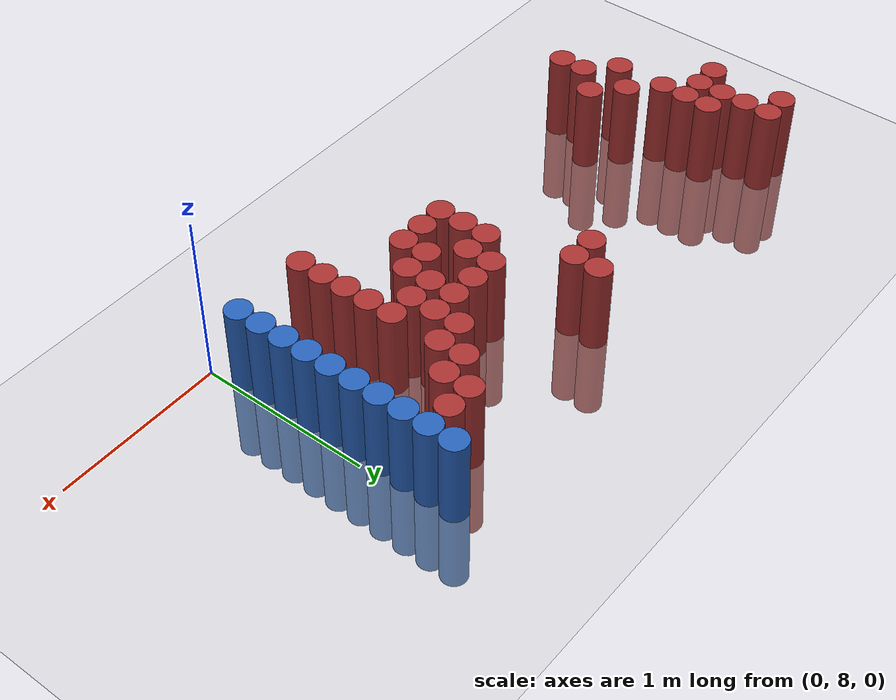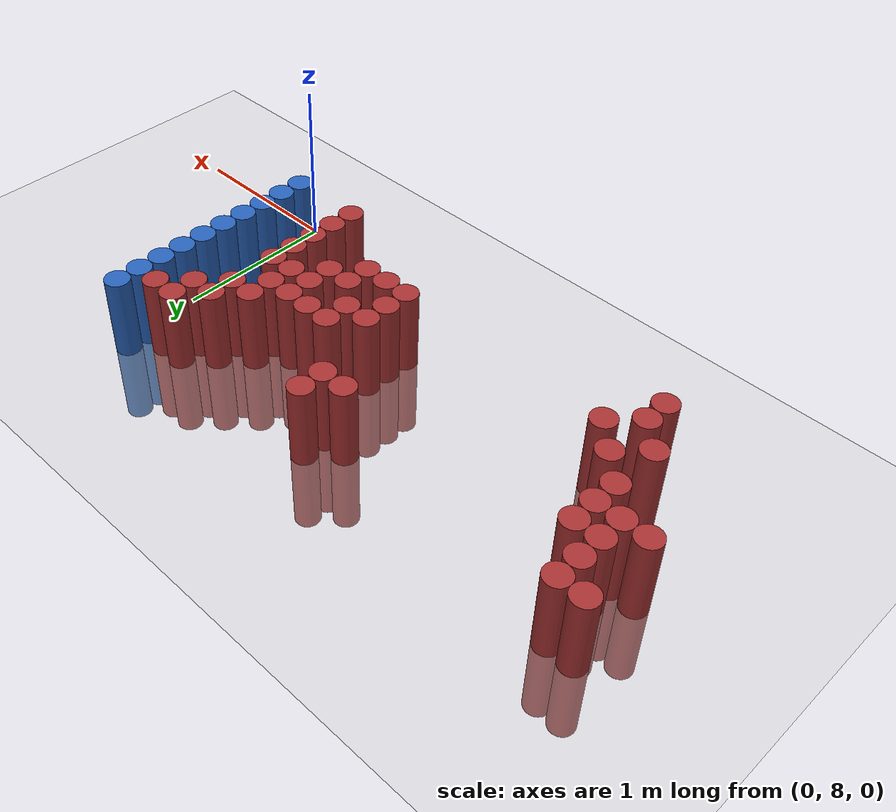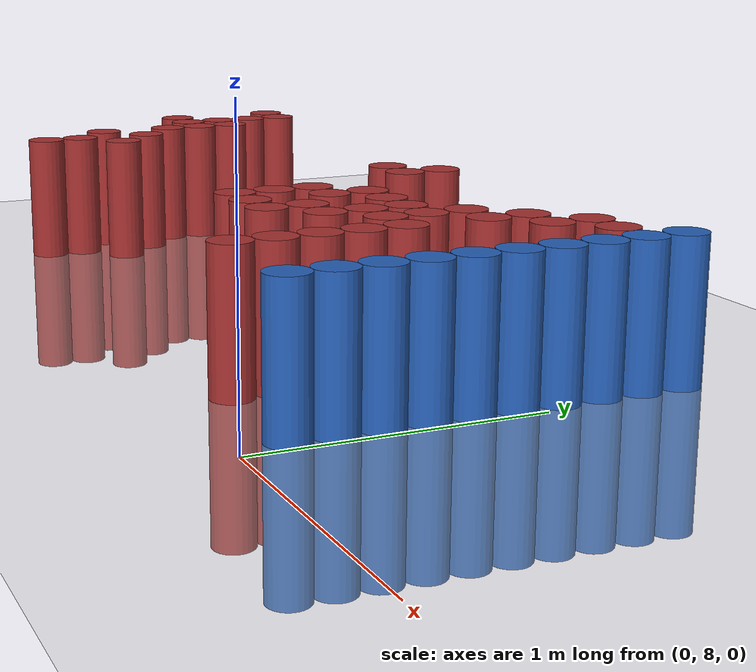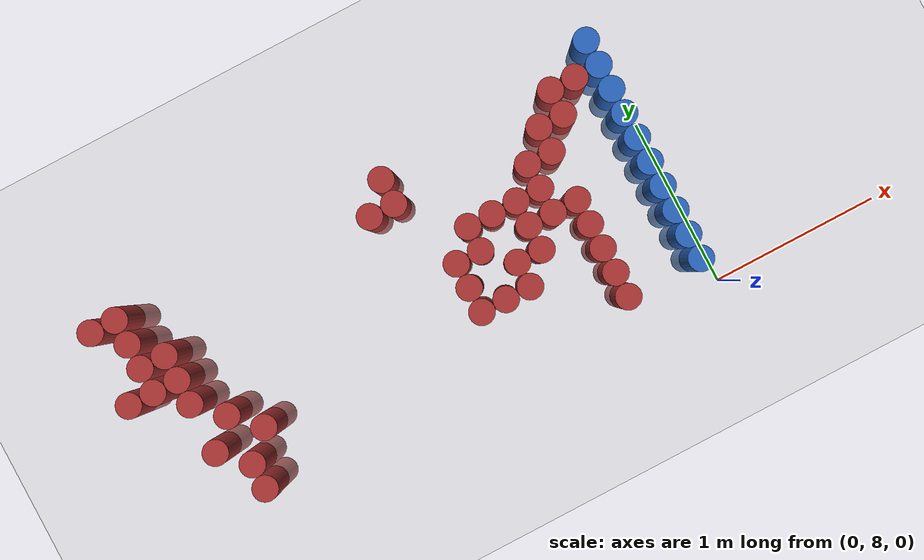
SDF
<sdf version="1.6">
 <world name="default">
  <model name="ground_plane">
   <static>1</static>
   <link name="link">
    <collision name="collision">
     <geometry><plane><normal>0 0 1</normal><size>100 100</size></plane></geometry>
     <surface><friction><ode><mu>100</mu><mu2>50</mu2></ode></friction></surface>
    </collision>
    <visual name="visual">
     <cast_shadows>0</cast_shadows>
     <geometry><plane><normal>0 0 1</normal><size>100 100</size></plane></geometry>
     <material>
      <script><uri>file://media/materials/scripts/gazebo.material</uri><name>Gazebo/Grey</name></script>
     </material>
    </visual>
   </link>
  </model>
  <model name="unit_cylinder_188">
   <static>1</static>
   <pose>-3.225000 8.925000 0.000000 0.000000 0.000000 0.000000</pose>
   <link name="link">
    <inertial>
     <mass>1</mass>
     <inertia><ixx>0.145833</ixx><ixy>0</ixy><ixz>0</ixz><iyy>0.145833</iyy><iyz>0</iyz><izz>0.125</izz></inertia>
    </inertial>
    <collision name="collision">
     <geometry><cylinder><radius>0.075000</radius><length>1</length></cylinder></geometry>
    </collision>
    <visual name="visual">
     <geometry><cylinder><radius>0.075000</radius><length>1</length></cylinder></geometry>
     <material>
      <ambient>0.648000 0.192000 0.192000 1</ambient>
      <diffuse>0.648000 0.192000 0.192000 1</diffuse>
     </material>
     <material>
      <script><name>Gazebo/Grey</name><uri>file://media/materials/scripts/gazebo.material</uri></script>
     </material>
    </visual>
   </link>
  </model>
  <model name="unit_cylinder_189">
   <static>1</static>
   <pose>-3.225000 9.375000 0.000000 0.000000 0.000000 0.000000</pose>
   <link name="link">
    <inertial>
     <mass>1</mass>
     <inertia><ixx>0.145833</ixx><ixy>0</ixy><ixz>0</ixz><iyy>0.145833</iyy><iyz>0</iyz><izz>0.125</izz></inertia>
    </inertial>
    <collision name="collision">
     <geometry><cylinder><radius>0.075000</radius><length>1</length></cylinder></geometry>
    </collision>
    <visual name="visual">
     <geometry><cylinder><radius>0.075000</radius><length>1</length></cylinder></geometry>
     <material>
      <ambient>0.648000 0.192000 0.192000 1</ambient>
      <diffuse>0.648000 0.192000 0.192000 1</diffuse>
     </material>
     <material>
      <script><name>Gazebo/Grey</name><uri>file://media/materials/scripts/gazebo.material</uri></script>
     </material>
    </visual>
   </link>
  </model>
  <model name="unit_cylinder_192">
   <static>1</static>
   <pose>-3.075000 8.925000 0.000000 0.000000 0.000000 0.000000</pose>
   <link name="link">
    <inertial>
     <mass>1</mass>
     <inertia><ixx>0.145833</ixx><ixy>0</ixy><ixz>0</ixz><iyy>0.145833</iyy><iyz>0</iyz><izz>0.125</izz></inertia>
    </inertial>
    <collision name="collision">
     <geometry><cylinder><radius>0.075000</radius><length>1</length></cylinder></geometry>
    </collision>
    <visual name="visual">
     <geometry><cylinder><radius>0.075000</radius><length>1</length></cylinder></geometry>
     <material>
      <ambient>0.648000 0.192000 0.192000 1</ambient>
      <diffuse>0.648000 0.192000 0.192000 1</diffuse>
     </material>
     <material>
      <script><name>Gazebo/Grey</name><uri>file://media/materials/scripts/gazebo.material</uri></script>
     </material>
    </visual>
   </link>
  </model>
  <model name="unit_cylinder_193">
   <static>1</static>
   <pose>-3.075000 9.075000 0.000000 0.000000 0.000000 0.000000</pose>
   <link name="link">
    <inertial>
     <mass>1</mass>
     <inertia><ixx>0.145833</ixx><ixy>0</ixy><ixz>0</ixz><iyy>0.145833</iyy><iyz>0</iyz><izz>0.125</izz></inertia>
    </inertial>
    <collision name="collision">
     <geometry><cylinder><radius>0.075000</radius><length>1</length></cylinder></geometry>
    </collision>
    <visual name="visual">
     <geometry><cylinder><radius>0.075000</radius><length>1</length></cylinder></geometry>
     <material>
      <ambient>0.648000 0.192000 0.192000 1</ambient>
      <diffuse>0.648000 0.192000 0.192000 1</diffuse>
     </material>
     <material>
      <script><name>Gazebo/Grey</name><uri>file://media/materials/scripts/gazebo.material</uri></script>
     </material>
    </visual>
   </link>
  </model>
  <model name="unit_cylinder_194">
   <static>1</static>
   <pose>-3.075000 9.225000 0.000000 0.000000 0.000000 0.000000</pose>
   <link name="link">
    <inertial>
     <mass>1</mass>
     <inertia><ixx>0.145833</ixx><ixy>0</ixy><ixz>0</ixz><iyy>0.145833</iyy><iyz>0</iyz><izz>0.125</izz></inertia>
    </inertial>
    <collision name="collision">
     <geometry><cylinder><radius>0.075000</radius><length>1</length></cylinder></geometry>
    </collision>
    <visual name="visual">
     <geometry><cylinder><radius>0.075000</radius><length>1</length></cylinder></geometry>
     <material>
      <ambient>0.648000 0.192000 0.192000 1</ambient>
      <diffuse>0.648000 0.192000 0.192000 1</diffuse>
     </material>
     <material>
      <script><name>Gazebo/Grey</name><uri>file://media/materials/scripts/gazebo.material</uri></script>
     </material>
    </visual>
   </link>
  </model>
  <model name="unit_cylinder_195">
   <static>1</static>
   <pose>-3.075000 9.375000 0.000000 0.000000 0.000000 0.000000</pose>
   <link name="link">
    <inertial>
     <mass>1</mass>
     <inertia><ixx>0.145833</ixx><ixy>0</ixy><ixz>0</ixz><iyy>0.145833</iyy><iyz>0</iyz><izz>0.125</izz></inertia>
    </inertial>
    <collision name="collision">
     <geometry><cylinder><radius>0.075000</radius><length>1</length></cylinder></geometry>
    </collision>
    <visual name="visual">
     <geometry><cylinder><radius>0.075000</radius><length>1</length></cylinder></geometry>
     <material>
      <ambient>0.648000 0.192000 0.192000 1</ambient>
      <diffuse>0.648000 0.192000 0.192000 1</diffuse>
     </material>
     <material>
      <script><name>Gazebo/Grey</name><uri>file://media/materials/scripts/gazebo.material</uri></script>
     </material>
    </visual>
   </link>
  </model>
  <model name="unit_cylinder_197">
   <static>1</static>
   <pose>-2.925000 8.475000 0.000000 0.000000 0.000000 0.000000</pose>
   <link name="link">
    <inertial>
     <mass>1</mass>
     <inertia><ixx>0.145833</ixx><ixy>0</ixy><ixz>0</ixz><iyy>0.145833</iyy><iyz>0</iyz><izz>0.125</izz></inertia>
    </inertial>
    <collision name="collision">
     <geometry><cylinder><radius>0.075000</radius><length>1</length></cylinder></geometry>
    </collision>
    <visual name="visual">
     <geometry><cylinder><radius>0.075000</radius><length>1</length></cylinder></geometry>
     <material>
      <ambient>0.648000 0.192000 0.192000 1</ambient>
      <diffuse>0.648000 0.192000 0.192000 1</diffuse>
     </material>
     <material>
      <script><name>Gazebo/Grey</name><uri>file://media/materials/scripts/gazebo.material</uri></script>
     </material>
    </visual>
   </link>
  </model>
  <model name="unit_cylinder_198">
   <static>1</static>
   <pose>-2.925000 8.775000 0.000000 0.000000 0.000000 0.000000</pose>
   <link name="link">
    <inertial>
     <mass>1</mass>
     <inertia><ixx>0.145833</ixx><ixy>0</ixy><ixz>0</ixz><iyy>0.145833</iyy><iyz>0</iyz><izz>0.125</izz></inertia>
    </inertial>
    <collision name="collision">
     <geometry><cylinder><radius>0.075000</radius><length>1</length></cylinder></geometry>
    </collision>
    <visual name="visual">
     <geometry><cylinder><radius>0.075000</radius><length>1</length></cylinder></geometry>
     <material>
      <ambient>0.648000 0.192000 0.192000 1</ambient>
      <diffuse>0.648000 0.192000 0.192000 1</diffuse>
     </material>
     <material>
      <script><name>Gazebo/Grey</name><uri>file://media/materials/scripts/gazebo.material</uri></script>
     </material>
    </visual>
   </link>
  </model>
  <model name="unit_cylinder_199">
   <static>1</static>
   <pose>-2.925000 8.925000 0.000000 0.000000 0.000000 0.000000</pose>
   <link name="link">
    <inertial>
     <mass>1</mass>
     <inertia><ixx>0.145833</ixx><ixy>0</ixy><ixz>0</ixz><iyy>0.145833</iyy><iyz>0</iyz><izz>0.125</izz></inertia>
    </inertial>
    <collision name="collision">
     <geometry><cylinder><radius>0.075000</radius><length>1</length></cylinder></geometry>
    </collision>
    <visual name="visual">
     <geometry><cylinder><radius>0.075000</radius><length>1</length></cylinder></geometry>
     <material>
      <ambient>0.648000 0.192000 0.192000 1</ambient>
      <diffuse>0.648000 0.192000 0.192000 1</diffuse>
     </material>
     <material>
      <script><name>Gazebo/Grey</name><uri>file://media/materials/scripts/gazebo.material</uri></script>
     </material>
    </visual>
   </link>
  </model>
  <model name="unit_cylinder_200">
   <static>1</static>
   <pose>-2.925000 9.075000 0.000000 0.000000 0.000000 0.000000</pose>
   <link name="link">
    <inertial>
     <mass>1</mass>
     <inertia><ixx>0.145833</ixx><ixy>0</ixy><ixz>0</ixz><iyy>0.145833</iyy><iyz>0</iyz><izz>0.125</izz></inertia>
    </inertial>
    <collision name="collision">
     <geometry><cylinder><radius>0.075000</radius><length>1</length></cylinder></geometry>
    </collision>
    <visual name="visual">
     <geometry><cylinder><radius>0.075000</radius><length>1</length></cylinder></geometry>
     <material>
      <ambient>0.648000 0.192000 0.192000 1</ambient>
      <diffuse>0.648000 0.192000 0.192000 1</diffuse>
     </material>
     <material>
      <script><name>Gazebo/Grey</name><uri>file://media/materials/scripts/gazebo.material</uri></script>
     </material>
    </visual>
   </link>
  </model>
  <model name="unit_cylinder_201">
   <static>1</static>
   <pose>-2.775000 8.175000 0.000000 0.000000 0.000000 0.000000</pose>
   <link name="link">
    <inertial>
     <mass>1</mass>
     <inertia><ixx>0.145833</ixx><ixy>0</ixy><ixz>0</ixz><iyy>0.145833</iyy><iyz>0</iyz><izz>0.125</izz></inertia>
    </inertial>
    <collision name="collision">
     <geometry><cylinder><radius>0.075000</radius><length>1</length></cylinder></geometry>
    </collision>
    <visual name="visual">
     <geometry><cylinder><radius>0.075000</radius><length>1</length></cylinder></geometry>
     <material>
      <ambient>0.648000 0.192000 0.192000 1</ambient>
      <diffuse>0.648000 0.192000 0.192000 1</diffuse>
     </material>
     <material>
      <script><name>Gazebo/Grey</name><uri>file://media/materials/scripts/gazebo.material</uri></script>
     </material>
    </visual>
   </link>
  </model>
  <model name="unit_cylinder_202">
   <static>1</static>
   <pose>-2.775000 8.325000 0.000000 0.000000 0.000000 0.000000</pose>
   <link name="link">
    <inertial>
     <mass>1</mass>
     <inertia><ixx>0.145833</ixx><ixy>0</ixy><ixz>0</ixz><iyy>0.145833</iyy><iyz>0</iyz><izz>0.125</izz></inertia>
    </inertial>
    <collision name="collision">
     <geometry><cylinder><radius>0.075000</radius><length>1</length></cylinder></geometry>
    </collision>
    <visual name="visual">
     <geometry><cylinder><radius>0.075000</radius><length>1</length></cylinder></geometry>
     <material>
      <ambient>0.648000 0.192000 0.192000 1</ambient>
      <diffuse>0.648000 0.192000 0.192000 1</diffuse>
     </material>
     <material>
      <script><name>Gazebo/Grey</name><uri>file://media/materials/scripts/gazebo.material</uri></script>
     </material>
    </visual>
   </link>
  </model>
  <model name="unit_cylinder_203">
   <static>1</static>
   <pose>-2.775000 8.625000 0.000000 0.000000 0.000000 0.000000</pose>
   <link name="link">
    <inertial>
     <mass>1</mass>
     <inertia><ixx>0.145833</ixx><ixy>0</ixy><ixz>0</ixz><iyy>0.145833</iyy><iyz>0</iyz><izz>0.125</izz></inertia>
    </inertial>
    <collision name="collision">
     <geometry><cylinder><radius>0.075000</radius><length>1</length></cylinder></geometry>
    </collision>
    <visual name="visual">
     <geometry><cylinder><radius>0.075000</radius><length>1</length></cylinder></geometry>
     <material>
      <ambient>0.648000 0.192000 0.192000 1</ambient>
      <diffuse>0.648000 0.192000 0.192000 1</diffuse>
     </material>
     <material>
      <script><name>Gazebo/Grey</name><uri>file://media/materials/scripts/gazebo.material</uri></script>
     </material>
    </visual>
   </link>
  </model>
  <model name="unit_cylinder_204">
   <static>1</static>
   <pose>-2.625000 8.475000 0.000000 0.000000 0.000000 0.000000</pose>
   <link name="link">
    <inertial>
     <mass>1</mass>
     <inertia><ixx>0.145833</ixx><ixy>0</ixy><ixz>0</ixz><iyy>0.145833</iyy><iyz>0</iyz><izz>0.125</izz></inertia>
    </inertial>
    <collision name="collision">
     <geometry><cylinder><radius>0.075000</radius><length>1</length></cylinder></geometry>
    </collision>
    <visual name="visual">
     <geometry><cylinder><radius>0.075000</radius><length>1</length></cylinder></geometry>
     <material>
      <ambient>0.648000 0.192000 0.192000 1</ambient>
      <diffuse>0.648000 0.192000 0.192000 1</diffuse>
     </material>
     <material>
      <script><name>Gazebo/Grey</name><uri>file://media/materials/scripts/gazebo.material</uri></script>
     </material>
    </visual>
   </link>
  </model>
  <model name="unit_cylinder_213">
   <static>1</static>
   <pose>-1.575000 9.225000 0.000000 0.000000 0.000000 0.000000</pose>
   <link name="link">
    <inertial>
     <mass>1</mass>
     <inertia><ixx>0.145833</ixx><ixy>0</ixy><ixz>0</ixz><iyy>0.145833</iyy><iyz>0</iyz><izz>0.125</izz></inertia>
    </inertial>
    <collision name="collision">
     <geometry><cylinder><radius>0.075000</radius><length>1</length></cylinder></geometry>
    </collision>
    <visual name="visual">
     <geometry><cylinder><radius>0.075000</radius><length>1</length></cylinder></geometry>
     <material>
      <ambient>0.648000 0.192000 0.192000 1</ambient>
      <diffuse>0.648000 0.192000 0.192000 1</diffuse>
     </material>
     <material>
      <script><name>Gazebo/Grey</name><uri>file://media/materials/scripts/gazebo.material</uri></script>
     </material>
    </visual>
   </link>
  </model>
  <model name="unit_cylinder_214">
   <static>1</static>
   <pose>-1.425000 9.225000 0.000000 0.000000 0.000000 0.000000</pose>
   <link name="link">
    <inertial>
     <mass>1</mass>
     <inertia><ixx>0.145833</ixx><ixy>0</ixy><ixz>0</ixz><iyy>0.145833</iyy><iyz>0</iyz><izz>0.125</izz></inertia>
    </inertial>
    <collision name="collision">
     <geometry><cylinder><radius>0.075000</radius><length>1</length></cylinder></geometry>
    </collision>
    <visual name="visual">
     <geometry><cylinder><radius>0.075000</radius><length>1</length></cylinder></geometry>
     <material>
      <ambient>0.648000 0.192000 0.192000 1</ambient>
      <diffuse>0.648000 0.192000 0.192000 1</diffuse>
     </material>
     <material>
      <script><name>Gazebo/Grey</name><uri>file://media/materials/scripts/gazebo.material</uri></script>
     </material>
    </visual>
   </link>
  </model>
  <model name="unit_cylinder_215">
   <static>1</static>
   <pose>-1.425000 9.375000 0.000000 0.000000 0.000000 0.000000</pose>
   <link name="link">
    <inertial>
     <mass>1</mass>
     <inertia><ixx>0.145833</ixx><ixy>0</ixy><ixz>0</ixz><iyy>0.145833</iyy><iyz>0</iyz><izz>0.125</izz></inertia>
    </inertial>
    <collision name="collision">
     <geometry><cylinder><radius>0.075000</radius><length>1</length></cylinder></geometry>
    </collision>
    <visual name="visual">
     <geometry><cylinder><radius>0.075000</radius><length>1</length></cylinder></geometry>
     <material>
      <ambient>0.648000 0.192000 0.192000 1</ambient>
      <diffuse>0.648000 0.192000 0.192000 1</diffuse>
     </material>
     <material>
      <script><name>Gazebo/Grey</name><uri>file://media/materials/scripts/gazebo.material</uri></script>
     </material>
    </visual>
   </link>
  </model>
  <model name="unit_cylinder_218">
   <static>1</static>
   <pose>-1.275000 8.475000 0.000000 0.000000 0.000000 0.000000</pose>
   <link name="link">
    <inertial>
     <mass>1</mass>
     <inertia><ixx>0.145833</ixx><ixy>0</ixy><ixz>0</ixz><iyy>0.145833</iyy><iyz>0</iyz><izz>0.125</izz></inertia>
    </inertial>
    <collision name="collision">
     <geometry><cylinder><radius>0.075000</radius><length>1</length></cylinder></geometry>
    </collision>
    <visual name="visual">
     <geometry><cylinder><radius>0.075000</radius><length>1</length></cylinder></geometry>
     <material>
      <ambient>0.648000 0.192000 0.192000 1</ambient>
      <diffuse>0.648000 0.192000 0.192000 1</diffuse>
     </material>
     <material>
      <script><name>Gazebo/Grey</name><uri>file://media/materials/scripts/gazebo.material</uri></script>
     </material>
    </visual>
   </link>
  </model>
  <model name="unit_cylinder_219">
   <static>1</static>
   <pose>-1.275000 8.625000 0.000000 0.000000 0.000000 0.000000</pose>
   <link name="link">
    <inertial>
     <mass>1</mass>
     <inertia><ixx>0.145833</ixx><ixy>0</ixy><ixz>0</ixz><iyy>0.145833</iyy><iyz>0</iyz><izz>0.125</izz></inertia>
    </inertial>
    <collision name="collision">
     <geometry><cylinder><radius>0.075000</radius><length>1</length></cylinder></geometry>
    </collision>
    <visual name="visual">
     <geometry><cylinder><radius>0.075000</radius><length>1</length></cylinder></geometry>
     <material>
      <ambient>0.648000 0.192000 0.192000 1</ambient>
      <diffuse>0.648000 0.192000 0.192000 1</diffuse>
     </material>
     <material>
      <script><name>Gazebo/Grey</name><uri>file://media/materials/scripts/gazebo.material</uri></script>
     </material>
    </visual>
   </link>
  </model>
  <model name="unit_cylinder_220">
   <static>1</static>
   <pose>-1.275000 8.775000 0.000000 0.000000 0.000000 0.000000</pose>
   <link name="link">
    <inertial>
     <mass>1</mass>
     <inertia><ixx>0.145833</ixx><ixy>0</ixy><ixz>0</ixz><iyy>0.145833</iyy><iyz>0</iyz><izz>0.125</izz></inertia>
    </inertial>
    <collision name="collision">
     <geometry><cylinder><radius>0.075000</radius><length>1</length></cylinder></geometry>
    </collision>
    <visual name="visual">
     <geometry><cylinder><radius>0.075000</radius><length>1</length></cylinder></geometry>
     <material>
      <ambient>0.648000 0.192000 0.192000 1</ambient>
      <diffuse>0.648000 0.192000 0.192000 1</diffuse>
     </material>
     <material>
      <script><name>Gazebo/Grey</name><uri>file://media/materials/scripts/gazebo.material</uri></script>
     </material>
    </visual>
   </link>
  </model>
  <model name="unit_cylinder_226">
   <static>1</static>
   <pose>-1.125000 8.475000 0.000000 0.000000 0.000000 0.000000</pose>
   <link name="link">
    <inertial>
     <mass>1</mass>
     <inertia><ixx>0.145833</ixx><ixy>0</ixy><ixz>0</ixz><iyy>0.145833</iyy><iyz>0</iyz><izz>0.125</izz></inertia>
    </inertial>
    <collision name="collision">
     <geometry><cylinder><radius>0.075000</radius><length>1</length></cylinder></geometry>
    </collision>
    <visual name="visual">
     <geometry><cylinder><radius>0.075000</radius><length>1</length></cylinder></geometry>
     <material>
      <ambient>0.648000 0.192000 0.192000 1</ambient>
      <diffuse>0.648000 0.192000 0.192000 1</diffuse>
     </material>
     <material>
      <script><name>Gazebo/Grey</name><uri>file://media/materials/scripts/gazebo.material</uri></script>
     </material>
    </visual>
   </link>
  </model>
  <model name="unit_cylinder_227">
   <static>1</static>
   <pose>-1.125000 8.775000 0.000000 0.000000 0.000000 0.000000</pose>
   <link name="link">
    <inertial>
     <mass>1</mass>
     <inertia><ixx>0.145833</ixx><ixy>0</ixy><ixz>0</ixz><iyy>0.145833</iyy><iyz>0</iyz><izz>0.125</izz></inertia>
    </inertial>
    <collision name="collision">
     <geometry><cylinder><radius>0.075000</radius><length>1</length></cylinder></geometry>
    </collision>
    <visual name="visual">
     <geometry><cylinder><radius>0.075000</radius><length>1</length></cylinder></geometry>
     <material>
      <ambient>0.648000 0.192000 0.192000 1</ambient>
      <diffuse>0.648000 0.192000 0.192000 1</diffuse>
     </material>
     <material>
      <script><name>Gazebo/Grey</name><uri>file://media/materials/scripts/gazebo.material</uri></script>
     </material>
    </visual>
   </link>
  </model>
  <model name="unit_cylinder_228">
   <static>1</static>
   <pose>-1.125000 8.925000 0.000000 0.000000 0.000000 0.000000</pose>
   <link name="link">
    <inertial>
     <mass>1</mass>
     <inertia><ixx>0.145833</ixx><ixy>0</ixy><ixz>0</ixz><iyy>0.145833</iyy><iyz>0</iyz><izz>0.125</izz></inertia>
    </inertial>
    <collision name="collision">
     <geometry><cylinder><radius>0.075000</radius><length>1</length></cylinder></geometry>
    </collision>
    <visual name="visual">
     <geometry><cylinder><radius>0.075000</radius><length>1</length></cylinder></geometry>
     <material>
      <ambient>0.648000 0.192000 0.192000 1</ambient>
      <diffuse>0.648000 0.192000 0.192000 1</diffuse>
     </material>
     <material>
      <script><name>Gazebo/Grey</name><uri>file://media/materials/scripts/gazebo.material</uri></script>
     </material>
    </visual>
   </link>
  </model>
  <model name="unit_cylinder_233">
   <static>1</static>
   <pose>-0.975000 8.475000 0.000000 0.000000 0.000000 0.000000</pose>
   <link name="link">
    <inertial>
     <mass>1</mass>
     <inertia><ixx>0.145833</ixx><ixy>0</ixy><ixz>0</ixz><iyy>0.145833</iyy><iyz>0</iyz><izz>0.125</izz></inertia>
    </inertial>
    <collision name="collision">
     <geometry><cylinder><radius>0.075000</radius><length>1</length></cylinder></geometry>
    </collision>
    <visual name="visual">
     <geometry><cylinder><radius>0.075000</radius><length>1</length></cylinder></geometry>
     <material>
      <ambient>0.648000 0.192000 0.192000 1</ambient>
      <diffuse>0.648000 0.192000 0.192000 1</diffuse>
     </material>
     <material>
      <script><name>Gazebo/Grey</name><uri>file://media/materials/scripts/gazebo.material</uri></script>
     </material>
    </visual>
   </link>
  </model>
  <model name="unit_cylinder_234">
   <static>1</static>
   <pose>-0.975000 8.625000 0.000000 0.000000 0.000000 0.000000</pose>
   <link name="link">
    <inertial>
     <mass>1</mass>
     <inertia><ixx>0.145833</ixx><ixy>0</ixy><ixz>0</ixz><iyy>0.145833</iyy><iyz>0</iyz><izz>0.125</izz></inertia>
    </inertial>
    <collision name="collision">
     <geometry><cylinder><radius>0.075000</radius><length>1</length></cylinder></geometry>
    </collision>
    <visual name="visual">
     <geometry><cylinder><radius>0.075000</radius><length>1</length></cylinder></geometry>
     <material>
      <ambient>0.648000 0.192000 0.192000 1</ambient>
      <diffuse>0.648000 0.192000 0.192000 1</diffuse>
     </material>
     <material>
      <script><name>Gazebo/Grey</name><uri>file://media/materials/scripts/gazebo.material</uri></script>
     </material>
    </visual>
   </link>
  </model>
  <model name="unit_cylinder_235">
   <static>1</static>
   <pose>-0.975000 8.925000 0.000000 0.000000 0.000000 0.000000</pose>
   <link name="link">
    <inertial>
     <mass>1</mass>
     <inertia><ixx>0.145833</ixx><ixy>0</ixy><ixz>0</ixz><iyy>0.145833</iyy><iyz>0</iyz><izz>0.125</izz></inertia>
    </inertial>
    <collision name="collision">
     <geometry><cylinder><radius>0.075000</radius><length>1</length></cylinder></geometry>
    </collision>
    <visual name="visual">
     <geometry><cylinder><radius>0.075000</radius><length>1</length></cylinder></geometry>
     <material>
      <ambient>0.648000 0.192000 0.192000 1</ambient>
      <diffuse>0.648000 0.192000 0.192000 1</diffuse>
     </material>
     <material>
      <script><name>Gazebo/Grey</name><uri>file://media/materials/scripts/gazebo.material</uri></script>
     </material>
    </visual>
   </link>
  </model>
  <model name="unit_cylinder_238">
   <static>1</static>
   <pose>-0.825000 8.625000 0.000000 0.000000 0.000000 0.000000</pose>
   <link name="link">
    <inertial>
     <mass>1</mass>
     <inertia><ixx>0.145833</ixx><ixy>0</ixy><ixz>0</ixz><iyy>0.145833</iyy><iyz>0</iyz><izz>0.125</izz></inertia>
    </inertial>
    <collision name="collision">
     <geometry><cylinder><radius>0.075000</radius><length>1</length></cylinder></geometry>
    </collision>
    <visual name="visual">
     <geometry><cylinder><radius>0.075000</radius><length>1</length></cylinder></geometry>
     <material>
      <ambient>0.648000 0.192000 0.192000 1</ambient>
      <diffuse>0.648000 0.192000 0.192000 1</diffuse>
     </material>
     <material>
      <script><name>Gazebo/Grey</name><uri>file://media/materials/scripts/gazebo.material</uri></script>
     </material>
    </visual>
   </link>
  </model>
  <model name="unit_cylinder_239">
   <static>1</static>
   <pose>-0.825000 8.775000 0.000000 0.000000 0.000000 0.000000</pose>
   <link name="link">
    <inertial>
     <mass>1</mass>
     <inertia><ixx>0.145833</ixx><ixy>0</ixy><ixz>0</ixz><iyy>0.145833</iyy><iyz>0</iyz><izz>0.125</izz></inertia>
    </inertial>
    <collision name="collision">
     <geometry><cylinder><radius>0.075000</radius><length>1</length></cylinder></geometry>
    </collision>
    <visual name="visual">
     <geometry><cylinder><radius>0.075000</radius><length>1</length></cylinder></geometry>
     <material>
      <ambient>0.648000 0.192000 0.192000 1</ambient>
      <diffuse>0.648000 0.192000 0.192000 1</diffuse>
     </material>
     <material>
      <script><name>Gazebo/Grey</name><uri>file://media/materials/scripts/gazebo.material</uri></script>
     </material>
    </visual>
   </link>
  </model>
  <model name="unit_cylinder_240">
   <static>1</static>
   <pose>-0.825000 8.925000 0.000000 0.000000 0.000000 0.000000</pose>
   <link name="link">
    <inertial>
     <mass>1</mass>
     <inertia><ixx>0.145833</ixx><ixy>0</ixy><ixz>0</ixz><iyy>0.145833</iyy><iyz>0</iyz><izz>0.125</izz></inertia>
    </inertial>
    <collision name="collision">
     <geometry><cylinder><radius>0.075000</radius><length>1</length></cylinder></geometry>
    </collision>
    <visual name="visual">
     <geometry><cylinder><radius>0.075000</radius><length>1</length></cylinder></geometry>
     <material>
      <ambient>0.648000 0.192000 0.192000 1</ambient>
      <diffuse>0.648000 0.192000 0.192000 1</diffuse>
     </material>
     <material>
      <script><name>Gazebo/Grey</name><uri>file://media/materials/scripts/gazebo.material</uri></script>
     </material>
    </visual>
   </link>
  </model>
  <model name="unit_cylinder_244">
   <static>1</static>
   <pose>-0.675000 8.775000 0.000000 0.000000 0.000000 0.000000</pose>
   <link name="link">
    <inertial>
     <mass>1</mass>
     <inertia><ixx>0.145833</ixx><ixy>0</ixy><ixz>0</ixz><iyy>0.145833</iyy><iyz>0</iyz><izz>0.125</izz></inertia>
    </inertial>
    <collision name="collision">
     <geometry><cylinder><radius>0.075000</radius><length>1</length></cylinder></geometry>
    </collision>
    <visual name="visual">
     <geometry><cylinder><radius>0.075000</radius><length>1</length></cylinder></geometry>
     <material>
      <ambient>0.648000 0.192000 0.192000 1</ambient>
      <diffuse>0.648000 0.192000 0.192000 1</diffuse>
     </material>
     <material>
      <script><name>Gazebo/Grey</name><uri>file://media/materials/scripts/gazebo.material</uri></script>
     </material>
    </visual>
   </link>
  </model>
  <model name="unit_cylinder_245">
   <static>1</static>
   <pose>-0.675000 8.925000 0.000000 0.000000 0.000000 0.000000</pose>
   <link name="link">
    <inertial>
     <mass>1</mass>
     <inertia><ixx>0.145833</ixx><ixy>0</ixy><ixz>0</ixz><iyy>0.145833</iyy><iyz>0</iyz><izz>0.125</izz></inertia>
    </inertial>
    <collision name="collision">
     <geometry><cylinder><radius>0.075000</radius><length>1</length></cylinder></geometry>
    </collision>
    <visual name="visual">
     <geometry><cylinder><radius>0.075000</radius><length>1</length></cylinder></geometry>
     <material>
      <ambient>0.648000 0.192000 0.192000 1</ambient>
      <diffuse>0.648000 0.192000 0.192000 1</diffuse>
     </material>
     <material>
      <script><name>Gazebo/Grey</name><uri>file://media/materials/scripts/gazebo.material</uri></script>
     </material>
    </visual>
   </link>
  </model>
  <model name="unit_cylinder_246">
   <static>1</static>
   <pose>-0.675000 9.075000 0.000000 0.000000 0.000000 0.000000</pose>
   <link name="link">
    <inertial>
     <mass>1</mass>
     <inertia><ixx>0.145833</ixx><ixy>0</ixy><ixz>0</ixz><iyy>0.145833</iyy><iyz>0</iyz><izz>0.125</izz></inertia>
    </inertial>
    <collision name="collision">
     <geometry><cylinder><radius>0.075000</radius><length>1</length></cylinder></geometry>
    </collision>
    <visual name="visual">
     <geometry><cylinder><radius>0.075000</radius><length>1</length></cylinder></geometry>
     <material>
      <ambient>0.648000 0.192000 0.192000 1</ambient>
      <diffuse>0.648000 0.192000 0.192000 1</diffuse>
     </material>
     <material>
      <script><name>Gazebo/Grey</name><uri>file://media/materials/scripts/gazebo.material</uri></script>
     </material>
    </visual>
   </link>
  </model>
  <model name="unit_cylinder_252">
   <static>1</static>
   <pose>-0.525000 8.175000 0.000000 0.000000 0.000000 0.000000</pose>
   <link name="link">
    <inertial>
     <mass>1</mass>
     <inertia><ixx>0.145833</ixx><ixy>0</ixy><ixz>0</ixz><iyy>0.145833</iyy><iyz>0</iyz><izz>0.125</izz></inertia>
    </inertial>
    <collision name="collision">
     <geometry><cylinder><radius>0.075000</radius><length>1</length></cylinder></geometry>
    </collision>
    <visual name="visual">
     <geometry><cylinder><radius>0.075000</radius><length>1</length></cylinder></geometry>
     <material>
      <ambient>0.648000 0.192000 0.192000 1</ambient>
      <diffuse>0.648000 0.192000 0.192000 1</diffuse>
     </material>
     <material>
      <script><name>Gazebo/Grey</name><uri>file://media/materials/scripts/gazebo.material</uri></script>
     </material>
    </visual>
   </link>
  </model>
  <model name="unit_cylinder_253">
   <static>1</static>
   <pose>-0.525000 8.325000 0.000000 0.000000 0.000000 0.000000</pose>
   <link name="link">
    <inertial>
     <mass>1</mass>
     <inertia><ixx>0.145833</ixx><ixy>0</ixy><ixz>0</ixz><iyy>0.145833</iyy><iyz>0</iyz><izz>0.125</izz></inertia>
    </inertial>
    <collision name="collision">
     <geometry><cylinder><radius>0.075000</radius><length>1</length></cylinder></geometry>
    </collision>
    <visual name="visual">
     <geometry><cylinder><radius>0.075000</radius><length>1</length></cylinder></geometry>
     <material>
      <ambient>0.648000 0.192000 0.192000 1</ambient>
      <diffuse>0.648000 0.192000 0.192000 1</diffuse>
     </material>
     <material>
      <script><name>Gazebo/Grey</name><uri>file://media/materials/scripts/gazebo.material</uri></script>
     </material>
    </visual>
   </link>
  </model>
  <model name="unit_cylinder_254">
   <static>1</static>
   <pose>-0.525000 8.475000 0.000000 0.000000 0.000000 0.000000</pose>
   <link name="link">
    <inertial>
     <mass>1</mass>
     <inertia><ixx>0.145833</ixx><ixy>0</ixy><ixz>0</ixz><iyy>0.145833</iyy><iyz>0</iyz><izz>0.125</izz></inertia>
    </inertial>
    <collision name="collision">
     <geometry><cylinder><radius>0.075000</radius><length>1</length></cylinder></geometry>
    </collision>
    <visual name="visual">
     <geometry><cylinder><radius>0.075000</radius><length>1</length></cylinder></geometry>
     <material>
      <ambient>0.648000 0.192000 0.192000 1</ambient>
      <diffuse>0.648000 0.192000 0.192000 1</diffuse>
     </material>
     <material>
      <script><name>Gazebo/Grey</name><uri>file://media/materials/scripts/gazebo.material</uri></script>
     </material>
    </visual>
   </link>
  </model>
  <model name="unit_cylinder_255">
   <static>1</static>
   <pose>-0.525000 8.625000 0.000000 0.000000 0.000000 0.000000</pose>
   <link name="link">
    <inertial>
     <mass>1</mass>
     <inertia><ixx>0.145833</ixx><ixy>0</ixy><ixz>0</ixz><iyy>0.145833</iyy><iyz>0</iyz><izz>0.125</izz></inertia>
    </inertial>
    <collision name="collision">
     <geometry><cylinder><radius>0.075000</radius><length>1</length></cylinder></geometry>
    </collision>
    <visual name="visual">
     <geometry><cylinder><radius>0.075000</radius><length>1</length></cylinder></geometry>
     <material>
      <ambient>0.648000 0.192000 0.192000 1</ambient>
      <diffuse>0.648000 0.192000 0.192000 1</diffuse>
     </material>
     <material>
      <script><name>Gazebo/Grey</name><uri>file://media/materials/scripts/gazebo.material</uri></script>
     </material>
    </visual>
   </link>
  </model>
  <model name="unit_cylinder_256">
   <static>1</static>
   <pose>-0.525000 8.775000 0.000000 0.000000 0.000000 0.000000</pose>
   <link name="link">
    <inertial>
     <mass>1</mass>
     <inertia><ixx>0.145833</ixx><ixy>0</ixy><ixz>0</ixz><iyy>0.145833</iyy><iyz>0</iyz><izz>0.125</izz></inertia>
    </inertial>
    <collision name="collision">
     <geometry><cylinder><radius>0.075000</radius><length>1</length></cylinder></geometry>
    </collision>
    <visual name="visual">
     <geometry><cylinder><radius>0.075000</radius><length>1</length></cylinder></geometry>
     <material>
      <ambient>0.648000 0.192000 0.192000 1</ambient>
      <diffuse>0.648000 0.192000 0.192000 1</diffuse>
     </material>
     <material>
      <script><name>Gazebo/Grey</name><uri>file://media/materials/scripts/gazebo.material</uri></script>
     </material>
    </visual>
   </link>
  </model>
  <model name="unit_cylinder_257">
   <static>1</static>
   <pose>-0.525000 9.075000 0.000000 0.000000 0.000000 0.000000</pose>
   <link name="link">
    <inertial>
     <mass>1</mass>
     <inertia><ixx>0.145833</ixx><ixy>0</ixy><ixz>0</ixz><iyy>0.145833</iyy><iyz>0</iyz><izz>0.125</izz></inertia>
    </inertial>
    <collision name="collision">
     <geometry><cylinder><radius>0.075000</radius><length>1</length></cylinder></geometry>
    </collision>
    <visual name="visual">
     <geometry><cylinder><radius>0.075000</radius><length>1</length></cylinder></geometry>
     <material>
      <ambient>0.648000 0.192000 0.192000 1</ambient>
      <diffuse>0.648000 0.192000 0.192000 1</diffuse>
     </material>
     <material>
      <script><name>Gazebo/Grey</name><uri>file://media/materials/scripts/gazebo.material</uri></script>
     </material>
    </visual>
   </link>
  </model>
  <model name="unit_cylinder_258">
   <static>1</static>
   <pose>-0.525000 9.225000 0.000000 0.000000 0.000000 0.000000</pose>
   <link name="link">
    <inertial>
     <mass>1</mass>
     <inertia><ixx>0.145833</ixx><ixy>0</ixy><ixz>0</ixz><iyy>0.145833</iyy><iyz>0</iyz><izz>0.125</izz></inertia>
    </inertial>
    <collision name="collision">
     <geometry><cylinder><radius>0.075000</radius><length>1</length></cylinder></geometry>
    </collision>
    <visual name="visual">
     <geometry><cylinder><radius>0.075000</radius><length>1</length></cylinder></geometry>
     <material>
      <ambient>0.648000 0.192000 0.192000 1</ambient>
      <diffuse>0.648000 0.192000 0.192000 1</diffuse>
     </material>
     <material>
      <script><name>Gazebo/Grey</name><uri>file://media/materials/scripts/gazebo.material</uri></script>
     </material>
    </visual>
   </link>
  </model>
  <model name="unit_cylinder_270">
   <static>1</static>
   <pose>-0.375000 9.225000 0.000000 0.000000 0.000000 0.000000</pose>
   <link name="link">
    <inertial>
     <mass>1</mass>
     <inertia><ixx>0.145833</ixx><ixy>0</ixy><ixz>0</ixz><iyy>0.145833</iyy><iyz>0</iyz><izz>0.125</izz></inertia>
    </inertial>
    <collision name="collision">
     <geometry><cylinder><radius>0.075000</radius><length>1</length></cylinder></geometry>
    </collision>
    <visual name="visual">
     <geometry><cylinder><radius>0.075000</radius><length>1</length></cylinder></geometry>
     <material>
      <ambient>0.648000 0.192000 0.192000 1</ambient>
      <diffuse>0.648000 0.192000 0.192000 1</diffuse>
     </material>
     <material>
      <script><name>Gazebo/Grey</name><uri>file://media/materials/scripts/gazebo.material</uri></script>
     </material>
    </visual>
   </link>
  </model>
  <model name="unit_cylinder_271">
   <static>1</static>
   <pose>-0.375000 9.375000 0.000000 0.000000 0.000000 0.000000</pose>
   <link name="link">
    <inertial>
     <mass>1</mass>
     <inertia><ixx>0.145833</ixx><ixy>0</ixy><ixz>0</ixz><iyy>0.145833</iyy><iyz>0</iyz><izz>0.125</izz></inertia>
    </inertial>
    <collision name="collision">
     <geometry><cylinder><radius>0.075000</radius><length>1</length></cylinder></geometry>
    </collision>
    <visual name="visual">
     <geometry><cylinder><radius>0.075000</radius><length>1</length></cylinder></geometry>
     <material>
      <ambient>0.648000 0.192000 0.192000 1</ambient>
      <diffuse>0.648000 0.192000 0.192000 1</diffuse>
     </material>
     <material>
      <script><name>Gazebo/Grey</name><uri>file://media/materials/scripts/gazebo.material</uri></script>
     </material>
    </visual>
   </link>
  </model>
  <model name="unit_cylinder_279">
   <static>1</static>
   <pose>-0.225000 9.375000 0.000000 0.000000 0.000000 0.000000</pose>
   <link name="link">
    <inertial>
     <mass>1</mass>
     <inertia><ixx>0.145833</ixx><ixy>0</ixy><ixz>0</ixz><iyy>0.145833</iyy><iyz>0</iyz><izz>0.125</izz></inertia>
    </inertial>
    <collision name="collision">
     <geometry><cylinder><radius>0.075000</radius><length>1</length></cylinder></geometry>
    </collision>
    <visual name="visual">
     <geometry><cylinder><radius>0.075000</radius><length>1</length></cylinder></geometry>
     <material>
      <ambient>0.648000 0.192000 0.192000 1</ambient>
      <diffuse>0.648000 0.192000 0.192000 1</diffuse>
     </material>
     <material>
      <script><name>Gazebo/Grey</name><uri>file://media/materials/scripts/gazebo.material</uri></script>
     </material>
    </visual>
   </link>
  </model>
  <model name="unit_cylinder_300">
   <static>1</static>
   <pose>-0.075000 8.175000 0.000000 0.000000 0.000000 0.000000</pose>
   <link name="link">
    <inertial>
     <mass>1</mass>
     <inertia><ixx>0.145833</ixx><ixy>0</ixy><ixz>0</ixz><iyy>0.145833</iyy><iyz>0</iyz><izz>0.125</izz></inertia>
    </inertial>
    <collision name="collision">
     <geometry><cylinder><radius>0.075000</radius><length>1</length></cylinder></geometry>
    </collision>
    <visual name="visual">
     <geometry><cylinder><radius>0.075000</radius><length>1</length></cylinder></geometry>
     <material>
      <ambient>0.152000 0.379000 0.720000 1</ambient>
      <diffuse>0.152000 0.379000 0.720000 1</diffuse>
     </material>
     <material>
      <script><name>Gazebo/Grey</name><uri>file://media/materials/scripts/gazebo.material</uri></script>
     </material>
    </visual>
   </link>
  </model>
  <model name="unit_cylinder_301">
   <static>1</static>
   <pose>-0.075000 8.325000 0.000000 0.000000 0.000000 0.000000</pose>
   <link name="link">
    <inertial>
     <mass>1</mass>
     <inertia><ixx>0.145833</ixx><ixy>0</ixy><ixz>0</ixz><iyy>0.145833</iyy><iyz>0</iyz><izz>0.125</izz></inertia>
    </inertial>
    <collision name="collision">
     <geometry><cylinder><radius>0.075000</radius><length>1</length></cylinder></geometry>
    </collision>
    <visual name="visual">
     <geometry><cylinder><radius>0.075000</radius><length>1</length></cylinder></geometry>
     <material>
      <ambient>0.152000 0.379000 0.720000 1</ambient>
      <diffuse>0.152000 0.379000 0.720000 1</diffuse>
     </material>
     <material>
      <script><name>Gazebo/Grey</name><uri>file://media/materials/scripts/gazebo.material</uri></script>
     </material>
    </visual>
   </link>
  </model>
  <model name="unit_cylinder_302">
   <static>1</static>
   <pose>-0.075000 8.475000 0.000000 0.000000 0.000000 0.000000</pose>
   <link name="link">
    <inertial>
     <mass>1</mass>
     <inertia><ixx>0.145833</ixx><ixy>0</ixy><ixz>0</ixz><iyy>0.145833</iyy><iyz>0</iyz><izz>0.125</izz></inertia>
    </inertial>
    <collision name="collision">
     <geometry><cylinder><radius>0.075000</radius><length>1</length></cylinder></geometry>
    </collision>
    <visual name="visual">
     <geometry><cylinder><radius>0.075000</radius><length>1</length></cylinder></geometry>
     <material>
      <ambient>0.152000 0.379000 0.720000 1</ambient>
      <diffuse>0.152000 0.379000 0.720000 1</diffuse>
     </material>
     <material>
      <script><name>Gazebo/Grey</name><uri>file://media/materials/scripts/gazebo.material</uri></script>
     </material>
    </visual>
   </link>
  </model>
  <model name="unit_cylinder_303">
   <static>1</static>
   <pose>-0.075000 8.625000 0.000000 0.000000 0.000000 0.000000</pose>
   <link name="link">
    <inertial>
     <mass>1</mass>
     <inertia><ixx>0.145833</ixx><ixy>0</ixy><ixz>0</ixz><iyy>0.145833</iyy><iyz>0</iyz><izz>0.125</izz></inertia>
    </inertial>
    <collision name="collision">
     <geometry><cylinder><radius>0.075000</radius><length>1</length></cylinder></geometry>
    </collision>
    <visual name="visual">
     <geometry><cylinder><radius>0.075000</radius><length>1</length></cylinder></geometry>
     <material>
      <ambient>0.152000 0.379000 0.720000 1</ambient>
      <diffuse>0.152000 0.379000 0.720000 1</diffuse>
     </material>
     <material>
      <script><name>Gazebo/Grey</name><uri>file://media/materials/scripts/gazebo.material</uri></script>
     </material>
    </visual>
   </link>
  </model>
  <model name="unit_cylinder_304">
   <static>1</static>
   <pose>-0.075000 8.775000 0.000000 0.000000 0.000000 0.000000</pose>
   <link name="link">
    <inertial>
     <mass>1</mass>
     <inertia><ixx>0.145833</ixx><ixy>0</ixy><ixz>0</ixz><iyy>0.145833</iyy><iyz>0</iyz><izz>0.125</izz></inertia>
    </inertial>
    <collision name="collision">
     <geometry><cylinder><radius>0.075000</radius><length>1</length></cylinder></geometry>
    </collision>
    <visual name="visual">
     <geometry><cylinder><radius>0.075000</radius><length>1</length></cylinder></geometry>
     <material>
      <ambient>0.152000 0.379000 0.720000 1</ambient>
      <diffuse>0.152000 0.379000 0.720000 1</diffuse>
     </material>
     <material>
      <script><name>Gazebo/Grey</name><uri>file://media/materials/scripts/gazebo.material</uri></script>
     </material>
    </visual>
   </link>
  </model>
  <model name="unit_cylinder_305">
   <static>1</static>
   <pose>-0.075000 8.925000 0.000000 0.000000 0.000000 0.000000</pose>
   <link name="link">
    <inertial>
     <mass>1</mass>
     <inertia><ixx>0.145833</ixx><ixy>0</ixy><ixz>0</ixz><iyy>0.145833</iyy><iyz>0</iyz><izz>0.125</izz></inertia>
    </inertial>
    <collision name="collision">
     <geometry><cylinder><radius>0.075000</radius><length>1</length></cylinder></geometry>
    </collision>
    <visual name="visual">
     <geometry><cylinder><radius>0.075000</radius><length>1</length></cylinder></geometry>
     <material>
      <ambient>0.152000 0.379000 0.720000 1</ambient>
      <diffuse>0.152000 0.379000 0.720000 1</diffuse>
     </material>
     <material>
      <script><name>Gazebo/Grey</name><uri>file://media/materials/scripts/gazebo.material</uri></script>
     </material>
    </visual>
   </link>
  </model>
  <model name="unit_cylinder_306">
   <static>1</static>
   <pose>-0.075000 9.075000 0.000000 0.000000 0.000000 0.000000</pose>
   <link name="link">
    <inertial>
     <mass>1</mass>
     <inertia><ixx>0.145833</ixx><ixy>0</ixy><ixz>0</ixz><iyy>0.145833</iyy><iyz>0</iyz><izz>0.125</izz></inertia>
    </inertial>
    <collision name="collision">
     <geometry><cylinder><radius>0.075000</radius><length>1</length></cylinder></geometry>
    </collision>
    <visual name="visual">
     <geometry><cylinder><radius>0.075000</radius><length>1</length></cylinder></geometry>
     <material>
      <ambient>0.152000 0.379000 0.720000 1</ambient>
      <diffuse>0.152000 0.379000 0.720000 1</diffuse>
     </material>
     <material>
      <script><name>Gazebo/Grey</name><uri>file://media/materials/scripts/gazebo.material</uri></script>
     </material>
    </visual>
   </link>
  </model>
  <model name="unit_cylinder_307">
   <static>1</static>
   <pose>-0.075000 9.225000 0.000000 0.000000 0.000000 0.000000</pose>
   <link name="link">
    <inertial>
     <mass>1</mass>
     <inertia><ixx>0.145833</ixx><ixy>0</ixy><ixz>0</ixz><iyy>0.145833</iyy><iyz>0</iyz><izz>0.125</izz></inertia>
    </inertial>
    <collision name="collision">
     <geometry><cylinder><radius>0.075000</radius><length>1</length></cylinder></geometry>
    </collision>
    <visual name="visual">
     <geometry><cylinder><radius>0.075000</radius><length>1</length></cylinder></geometry>
     <material>
      <ambient>0.152000 0.379000 0.720000 1</ambient>
      <diffuse>0.152000 0.379000 0.720000 1</diffuse>
     </material>
     <material>
      <script><name>Gazebo/Grey</name><uri>file://media/materials/scripts/gazebo.material</uri></script>
     </material>
    </visual>
   </link>
  </model>
  <model name="unit_cylinder_308">
   <static>1</static>
   <pose>-0.075000 9.375000 0.000000 0.000000 0.000000 0.000000</pose>
   <link name="link">
    <inertial>
     <mass>1</mass>
     <inertia><ixx>0.145833</ixx><ixy>0</ixy><ixz>0</ixz><iyy>0.145833</iyy><iyz>0</iyz><izz>0.125</izz></inertia>
    </inertial>
    <collision name="collision">
     <geometry><cylinder><radius>0.075000</radius><length>1</length></cylinder></geometry>
    </collision>
    <visual name="visual">
     <geometry><cylinder><radius>0.075000</radius><length>1</length></cylinder></geometry>
     <material>
      <ambient>0.152000 0.379000 0.720000 1</ambient>
      <diffuse>0.152000 0.379000 0.720000 1</diffuse>
     </material>
     <material>
      <script><name>Gazebo/Grey</name><uri>file://media/materials/scripts/gazebo.material</uri></script>
     </material>
    </visual>
   </link>
  </model>
  <model name="unit_cylinder_309">
   <static>1</static>
   <pose>-0.075000 9.525000 0.000000 0.000000 0.000000 0.000000</pose>
   <link name="link">
    <inertial>
     <mass>1</mass>
     <inertia><ixx>0.145833</ixx><ixy>0</ixy><ixz>0</ixz><iyy>0.145833</iyy><iyz>0</iyz><izz>0.125</izz></inertia>
    </inertial>
    <collision name="collision">
     <geometry><cylinder><radius>0.075000</radius><length>1</length></cylinder></geometry>
    </collision>
    <visual name="visual">
     <geometry><cylinder><radius>0.075000</radius><length>1</length></cylinder></geometry>
     <material>
      <ambient>0.152000 0.379000 0.720000 1</ambient>
      <diffuse>0.152000 0.379000 0.720000 1</diffuse>
     </material>
     <material>
      <script><name>Gazebo/Grey</name><uri>file://media/materials/scripts/gazebo.material</uri></script>
     </material>
    </visual>
   </link>
  </model>
 </world>
</sdf>
